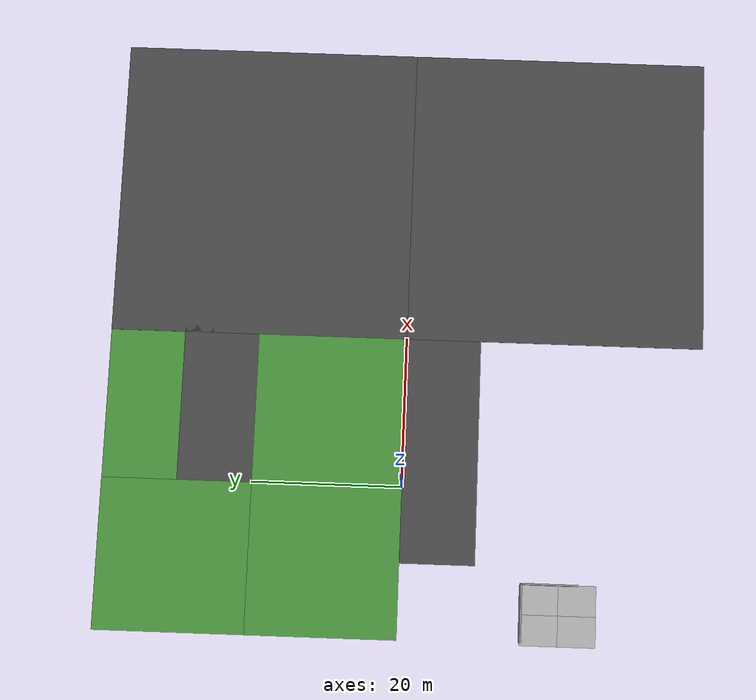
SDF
<sdf version="1.4">
 <world name="default">
  <plugin name="gazebo_octomap" filename="librotors_gazebo_octomap_plugin.so">
   <octomapPubTopic>world/octomap</octomapPubTopic>
   <octomapServiceName>world/get_octomap</octomapServiceName>
  </plugin>
  <light name="sun" type="directional">
   <pose>0 0 10 0 0 0</pose>
   <diffuse>0.8 0.8 0.8 1</diffuse>
   <specular>0.2 0.2 0.2 1</specular>
   <attenuation>
    <range>1000</range>
    <constant>0.9</constant>
    <linear>0.01</linear>
    <quadratic>0.001</quadratic>
   </attenuation>
   <direction>-0.5 0.1 -0.9</direction>
  </light>
  <plugin name="ros_interface_plugin" filename="librotors_gazebo_ros_interface_plugin.so"/>
  <physics type="ode">
   <ode>
    <solver><type>quick</type><iters>1000</iters><sor>1.3</sor></solver>
    <constraints>
     <cfm>0</cfm>
     <erp>0.2</erp>
     <contact_max_correcting_vel>100</contact_max_correcting_vel>
     <contact_surface_layer>0.001</contact_surface_layer>
    </constraints>
   </ode>
   <max_step_size>0.01</max_step_size>
   <real_time_factor>1</real_time_factor>
   <real_time_update_rate>100</real_time_update_rate>
   <gravity>0 0 -9.8</gravity>
  </physics>
  <scene><ambient>0.4 0.4 0.4 1</ambient><background>0.7 0.7 0.7 1</background><shadows>1</shadows></scene>
  <spherical_coordinates>
   <surface_model>EARTH_WGS84</surface_model>
   <latitude_deg>47.3667</latitude_deg>
   <longitude_deg>8.5500</longitude_deg>
   <elevation>500.0</elevation>
   <heading_deg>0</heading_deg>
  </spherical_coordinates>
  <model name="asphalt_plane">
   <static>1</static>
   <link name="link">
    <collision name="collision"><geometry><box><size>40 40 0.1</size></box></geometry></collision>
    <visual name="visual">
     <cast_shadows>0</cast_shadows>
     <geometry><box><size>40 40 0.1</size></box></geometry>
     <material>
      <script>
       <uri>model://asphalt_plane/materials/scripts</uri>
       <uri>model://asphalt_plane/materials/textures</uri>
       <name>vrc/asphalt</name>
      </script>
     </material>
    </visual>
    <velocity_decay><linear>0</linear><angular>0</angular></velocity_decay>
   </link>
   <pose>10 10 -0.1 0 0 0</pose>
  </model>
  <model name="asphalt_plane_0">
   <static>1</static>
   <link name="link">
    <collision name="collision"><geometry><box><size>40 40 0.1</size></box></geometry></collision>
    <visual name="visual">
     <cast_shadows>0</cast_shadows>
     <geometry><box><size>40 40 0.1</size></box></geometry>
     <material>
      <script>
       <uri>model://asphalt_plane/materials/scripts</uri>
       <uri>model://asphalt_plane/materials/textures</uri>
       <name>vrc/asphalt</name>
      </script>
     </material>
    </visual>
   </link>
   <pose>40 20 -0.1 0 -0 0</pose>
  </model>
  <model name="asphalt_plane_1">
   <static>1</static>
   <link name="link">
    <collision name="collision"><geometry><box><size>40 40 0.1</size></box></geometry></collision>
    <visual name="visual">
     <cast_shadows>0</cast_shadows>
     <geometry><box><size>40 40 0.1</size></box></geometry>
     <material>
      <script>
       <uri>model://asphalt_plane/materials/scripts</uri>
       <uri>model://asphalt_plane/materials/textures</uri>
       <name>vrc/asphalt</name>
      </script>
     </material>
    </visual>
   </link>
   <pose>40 -20 -0.1 0 -0 0</pose>
  </model>
  <model name="grass_plane">
   <static>1</static>
   <link name="link">
    <collision name="collision">
     <geometry><plane><normal>0 0 1</normal><size>500 500</size></plane></geometry>
     <surface><friction><ode><mu>0.5</mu><mu2>0.5</mu2></ode></friction></surface>
    </collision>
    <visual name="visual_0">
     <cast_shadows>0</cast_shadows>
     <geometry><plane><normal>0 0 1</normal><size>20 20</size></plane></geometry>
     <material>
      <script>
       <uri>model://grass_plane/materials/scripts</uri>
       <uri>model://grass_plane/materials/textures</uri>
       <name>vrc/grass</name>
      </script>
     </material>
    </visual>
    <visual name="visual_1">
     <pose>-20 -20 0 0 -0 0</pose>
     <cast_shadows>0</cast_shadows>
     <geometry><plane><normal>0 0 1</normal><size>20 20</size></plane></geometry>
     <material>
      <script>
       <uri>model://grass_plane/materials/scripts</uri>
       <uri>model://grass_plane/materials/textures</uri>
       <name>vrc/grass</name>
      </script>
     </material>
    </visual>
    <visual name="visual_2">
     <pose>0 -20 0 0 -0 0</pose>
     <cast_shadows>0</cast_shadows>
     <geometry><plane><normal>0 0 1</normal><size>20 20</size></plane></geometry>
     <material>
      <script>
       <uri>model://grass_plane/materials/scripts</uri>
       <uri>model://grass_plane/materials/textures</uri>
       <name>vrc/grass</name>
      </script>
     </material>
    </visual>
    <visual name="visual_3">
     <pose>-20 0 0 0 -0 0</pose>
     <cast_shadows>0</cast_shadows>
     <geometry><plane><normal>0 0 1</normal><size>20 20</size></plane></geometry>
     <material>
      <script>
       <uri>model://grass_plane/materials/scripts</uri>
       <uri>model://grass_plane/materials/textures</uri>
       <name>vrc/grass</name>
      </script>
     </material>
    </visual>
   </link>
   <pose>10 30 0 0 -0 0</pose>
  </model>
  <model name="mud_box">
   <static>1</static>
   <link name="link">
    <collision name="collision"><geometry><box><size>8 10 0.2</size></box></geometry></collision>
    <visual name="visual_1">
     <pose>-2 2.5 0 0 0 0</pose>
     <cast_shadows>0</cast_shadows>
     <geometry><box><size>4 5 0.2</size></box></geometry>
     <material>
      <script>
       <uri>model://mud_box/materials/scripts</uri>
       <uri>model://mud_box/materials/textures</uri>
       <name>vrc/mud</name>
      </script>
     </material>
    </visual>
    <visual name="visual_2">
     <pose>2 2.5 0 0 0 0</pose>
     <cast_shadows>0</cast_shadows>
     <geometry><box><size>4 5 0.2</size></box></geometry>
     <material>
      <script>
       <uri>model://mud_box/materials/scripts</uri>
       <uri>model://mud_box/materials/textures</uri>
       <name>vrc/mud</name>
      </script>
     </material>
    </visual>
    <visual name="visual_3">
     <pose>2 -2.5 0 0 0 0</pose>
     <cast_shadows>0</cast_shadows>
     <geometry><box><size>4 5 0.2</size></box></geometry>
     <material>
      <script>
       <uri>model://mud_box/materials/scripts</uri>
       <uri>model://mud_box/materials/textures</uri>
       <name>vrc/mud</name>
      </script>
     </material>
    </visual>
    <visual name="visual_4">
     <pose>-2 -2.5 0 0 0 0</pose>
     <cast_shadows>0</cast_shadows>
     <geometry><box><size>4 5 0.2</size></box></geometry>
     <material>
      <script>
       <uri>model://mud_box/materials/scripts</uri>
       <uri>model://mud_box/materials/textures</uri>
       <name>vrc/mud</name>
      </script>
     </material>
    </visual>
    <velocity_decay><linear>0</linear><angular>0</angular></velocity_decay>
   </link>
   <pose>-16.1 -21 0 0 0 0</pose>
  </model>
  <model name="grey_wall">
   <static>1</static>
   <link name="link">
    <pose>0 0 1.4 0 0 0</pose>
    <collision name="collision"><geometry><box><size>7.5 0.2 2.8</size></box></geometry></collision>
    <visual name="visual">
     <cast_shadows>0</cast_shadows>
     <geometry><box><size>7.5 0.2 2.8</size></box></geometry>
     <material>
      <script>
       <uri>model://grey_wall/materials/scripts</uri>
       <uri>model://grey_wall/materials/textures</uri>
       <name>vrc/grey_wall</name>
      </script>
     </material>
    </visual>
    <velocity_decay><linear>0</linear><angular>0</angular></velocity_decay>
   </link>
   <pose>-16 -16 0 0 0 0</pose>
  </model>
  <model name="grey_wall_0">
   <static>1</static>
   <link name="link">
    <pose>0 0 1.4 0 0 0</pose>
    <collision name="collision"><geometry><box><size>7.5 0.2 2.8</size></box></geometry></collision>
    <visual name="visual">
     <cast_shadows>0</cast_shadows>
     <geometry><box><size>7.5 0.2 2.8</size></box></geometry>
     <material>
      <script>
       <uri>model://grey_wall/materials/scripts</uri>
       <uri>model://grey_wall/materials/textures</uri>
       <name>vrc/grey_wall</name>
      </script>
     </material>
    </visual>
    <velocity_decay><linear>0</linear><angular>0</angular></velocity_decay>
   </link>
   <pose>-12.15 -19.7 0 0 0 -1.57378</pose>
  </model>
 </world>
</sdf>
